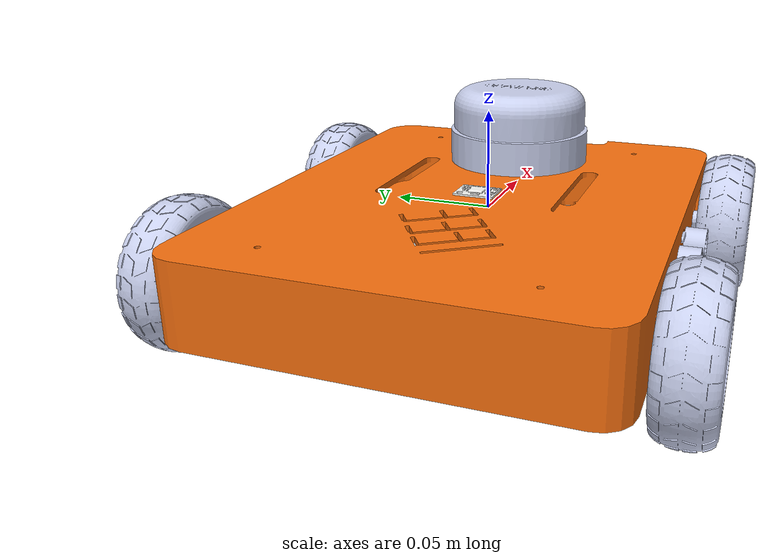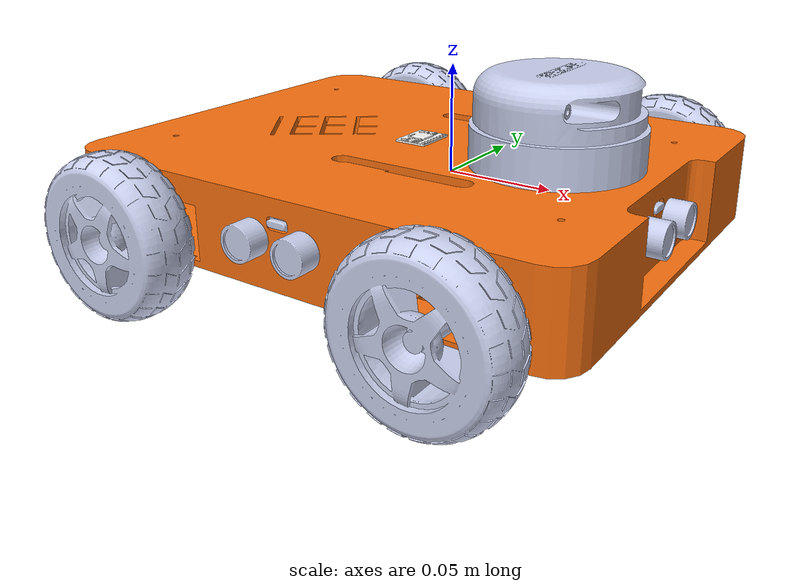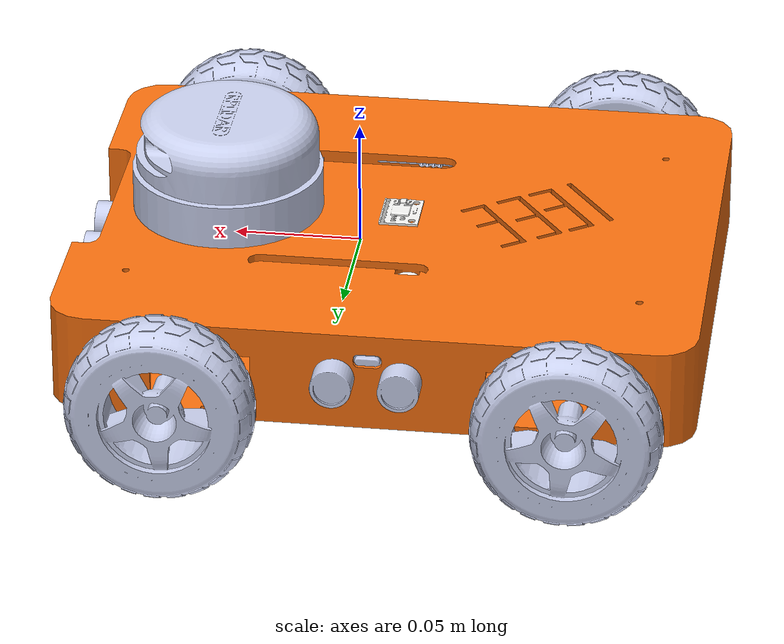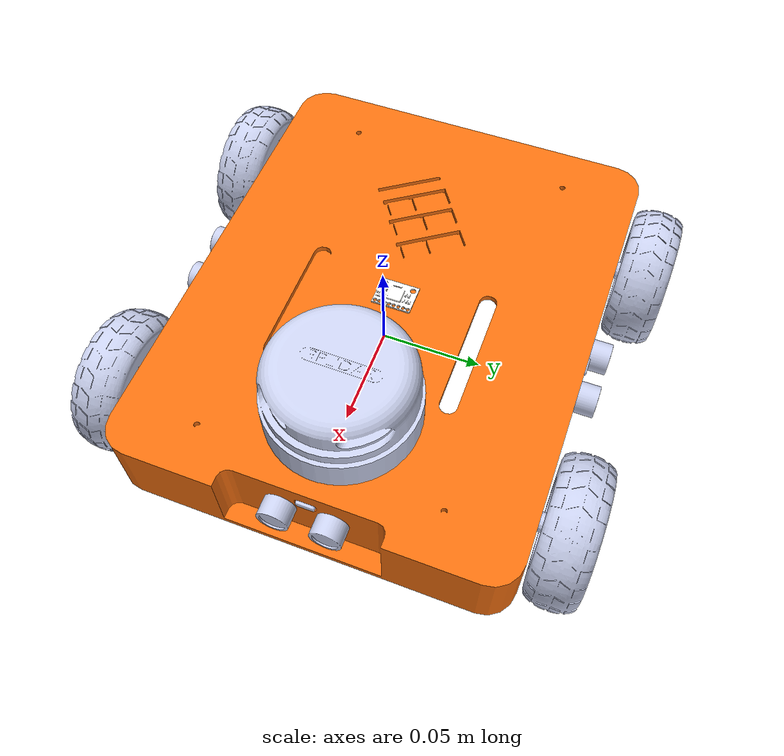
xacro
<robot xmlns:xacro="http://www.ros.org/wiki/xacro" name="milestone2_robot">

<xacro:include filename="$(find milestone2_robot)/urdf/robot.gazebo"/>
<xacro:include filename="$(find milestone2_robot)/urdf/lidar_mpu.xacro"/>
<xacro:include filename="$(find milestone2_robot)/urdf/ultrasonic.xacro"/>
  <link
    name="base_link">
    <inertial>
      <origin
        xyz="-0.0185551553604413 8.98921448433398E-06 -0.00732007406833168"
        rpy="0 0 0" />
      <mass
        value="0.32673937885095" />
      <inertia
        ixx="0.00128436380730563"
        ixy="5.22949659393556E-07"
        ixz="2.88323337445004E-06"
        iyy="0.00199506204789055"
        iyz="-4.28094806808404E-08"
        izz="0.00324543983807175" />
    </inertial>
    <visual>
      <origin
        xyz="0 0 0"
        rpy="0 0 0" />
      <geometry>
        <mesh
          filename="package://milestone2_robot/meshes/base_link.STL" />
      </geometry>
      <material
        name="">
        <color
          rgba="0.972549019607843 0.43921568627451 0.0588235294117647 1" />
      </material>
    </visual>
    <collision>
      <origin
        xyz="0 0 0"
        rpy="0 0 0" />
      <geometry>
        <mesh
          filename="package://milestone2_robot/meshes/base_link.STL" />
      </geometry>
    </collision>
  </link>
  <link
    name="front_right">
    <inertial>
      <origin
        xyz="8.3066E-08 0.006116 -1.0191E-07"
        rpy="0 0 0" />
      <mass
        value="0.030153" />
      <inertia
        ixx="1.3543E-05"
        ixy="-2.1848E-10"
        ixz="7.5064E-11"
        iyy="2.2528E-05"
        iyz="-3.1083E-10"
        izz="1.3543E-05" />
    </inertial>
    <visual>
      <origin
        xyz="0 0 0"
        rpy="0 0 0" />
      <geometry>
        <mesh
          filename="package://milestone2_robot/meshes/front_right.STL" />
      </geometry>
      <material
        name="">
        <color
          rgba="0.79216 0.81961 0.93333 1" />
      </material>
    </visual>
    <collision>
      <origin
        xyz="0 0 0"
        rpy="0 0 0" />
      <geometry>
        <mesh
          filename="package://milestone2_robot/meshes/front_right.STL" />
      </geometry>
    </collision>
  </link>
  <joint
    name="front_right_joint"
    type="continuous">
    <origin
      xyz="0.061391 -0.12147 -0.015218"
      rpy="0 0 0" />
    <parent
      link="base_link" />
    <child
      link="front_right" />
    <axis
      xyz="0 1 0" />
  </joint>
  <link
    name="front_left">
    <inertial>
      <origin
        xyz="-1.1259E-07 -0.006116 6.8694E-08"
        rpy="0 0 0" />
      <mass
        value="0.030153" />
      <inertia
        ixx="1.3543E-05"
        ixy="2.774E-10"
        ixz="7.9895E-11"
        iyy="2.2528E-05"
        iyz="2.5952E-10"
        izz="1.3543E-05" />
    </inertial>
    <visual>
      <origin
        xyz="0 0 0"
        rpy="0 0 0" />
      <geometry>
        <mesh
          filename="package://milestone2_robot/meshes/front_left.STL" />
      </geometry>
      <material
        name="">
        <color
          rgba="0.79216 0.81961 0.93333 1" />
      </material>
    </visual>
    <collision>
      <origin
        xyz="0 0 0"
        rpy="0 0 0" />
      <geometry>
        <mesh
          filename="package://milestone2_robot/meshes/front_left.STL" />
      </geometry>
    </collision>
  </link>
  <joint
    name="front_left_joint"
    type="continuous">
    <origin
      xyz="0.061371 0.12143 -0.0152"
      rpy="0 0 0" />
    <parent
      link="base_link" />
    <child
      link="front_left" />
    <axis
      xyz="0 1 0" />
  </joint>
  <link
    name="rear_right">
    <inertial>
      <origin
        xyz="1.1259E-07 0.006116 6.8694E-08"
        rpy="0 0 0" />
      <mass
        value="0.030153" />
      <inertia
        ixx="1.3543E-05"
        ixy="2.774E-10"
        ixz="-7.9895E-11"
        iyy="2.2528E-05"
        iyz="-2.5952E-10"
        izz="1.3543E-05" />
    </inertial>
    <visual>
      <origin
        xyz="0 0 0"
        rpy="0 0 0" />
      <geometry>
        <mesh
          filename="package://milestone2_robot/meshes/rear_right.STL" />
      </geometry>
      <material
        name="">
        <color
          rgba="0.79216 0.81961 0.93333 1" />
      </material>
    </visual>
    <collision>
      <origin
        xyz="0 0 0"
        rpy="0 0 0" />
      <geometry>
        <mesh
          filename="package://milestone2_robot/meshes/rear_right.STL" />
      </geometry>
    </collision>
  </link>
  <joint
    name="rear_right_joint"
    type="continuous">
    <origin
      xyz="-0.094299 -0.12147 -0.0152"
      rpy="0 0 0" />
    <parent
      link="base_link" />
    <child
      link="rear_right" />
    <axis
      xyz="0 1 0" />
  </joint>
  <link
    name="rear_left">
    <inertial>
      <origin
        xyz="-8.3066E-08 -0.006116 -1.0191E-07"
        rpy="0 0 0" />
      <mass
        value="0.030153" />
      <inertia
        ixx="1.3543E-05"
        ixy="-2.1848E-10"
        ixz="-7.5064E-11"
        iyy="2.2528E-05"
        iyz="3.1083E-10"
        izz="1.3543E-05" />
    </inertial>
    <visual>
      <origin
        xyz="0 0 0"
        rpy="0 0 0" />
      <geometry>
        <mesh
          filename="package://milestone2_robot/meshes/rear_left.STL" />
      </geometry>
      <material
        name="">
        <color
          rgba="0.79216 0.81961 0.93333 1" />
      </material>
    </visual>
    <collision>
      <origin
        xyz="0 0 0"
        rpy="0 0 0" />
      <geometry>
        <mesh
          filename="package://milestone2_robot/meshes/rear_left.STL" />
      </geometry>
    </collision>
  </link>
  <joint
    name="rear_left_joint"
    type="continuous">
    <origin
      xyz="-0.094319 0.12143 -0.015218"
      rpy="0 0 0" />
    <parent
      link="base_link" />
    <child
      link="rear_left" />
    <axis
      xyz="0 1 0" />
  </joint>

<xacro:include filename="$(find milestone2_robot)/urdf/robot.gazebo"/>
<gazebo reference="base_link">
<material>Gazebo/Orange</material>
</gazebo>
<gazebo reference="rear_left">
<material>Gazebo/Black</material>
</gazebo>
<gazebo reference="rear_right">
<material>Gazebo/Black</material>
</gazebo>
<gazebo reference="front_left">
<material>Gazebo/Black</material>
</gazebo>
<gazebo reference="front_right">
<material>Gazebo/Black</material>
</gazebo>
</robot>

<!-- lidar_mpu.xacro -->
<robot xmlns:xacro="http://www.ros.org/wiki/xacro" name="milestone2_robot">
      <link
    name="lidar">
    <inertial>
      <origin
        xyz="-0.027757 0.00015412 -0.012215"
        rpy="0 0 0" />
      <mass
        value="0.16307" />
      <inertia
        ixx="6.0761E-05"
        ixy="2.7477E-08"
        ixz="-2.4121E-07"
        iyy="6.0402E-05"
        iyz="-6.2651E-09"
        izz="0.00010759" />
    </inertial>
    <visual>
      <origin
        xyz="0 0 0"
        rpy="0 0 0" />
      <geometry>
        <mesh
          filename="package://milestone2_robot/meshes/lidar.STL" />
      </geometry>
      <material
        name="">
        <color
          rgba="0.79216 0.81961 0.93333 1" />
      </material>
    </visual>
    <collision>
      <origin
        xyz="0 0 0"
        rpy="0 0 0" />
      <geometry>
        <mesh
          filename="package://milestone2_robot/meshes/lidar.STL" />
      </geometry>
    </collision>
  </link>
  <joint
    name="lidar_joint"
    type="fixed">
    <origin
      xyz="0.079475 -0.0001912 0.043042"
      rpy="0 0 0" />
    <parent
      link="base_link" />
    <child
      link="lidar" />
    <axis
      xyz="0 0 0" />
  </joint>
  <link
    name="mpu">
    <inertial>
      <origin
        xyz="-0.00033795 -0.0002439 -0.0013042"
        rpy="0 0 0" />
      <mass
        value="0.00035125" />
      <inertia
        ixx="9.4569E-09"
        ixy="-2.6879E-13"
        ixz="8.3436E-26"
        iyy="5.2353E-09"
        iyz="-7.9805E-26"
        izz="1.4636E-08" />
    </inertial>
    <visual>
      <origin
        xyz="0 0 0"
        rpy="0 0 0" />
      <geometry>
        <mesh
          filename="package://milestone2_robot/meshes/mpu.STL" />
      </geometry>
      <material
        name="">
        <color
          rgba="0.96471 0.96471 0.95294 1" />
      </material>
    </visual>
    <collision>
      <origin
        xyz="0 0 0"
        rpy="0 0 0" />
      <geometry>
        <mesh
          filename="package://milestone2_robot/meshes/mpu.STL" />
      </geometry>
    </collision>
  </link>
  <joint
    name="mpu_joint"
    type="fixed">
    <origin
      xyz="-0.016366 6.8363E-05 0.014742"
      rpy="0 0 0" />
    <parent
      link="base_link" />
    <child
      link="mpu" />
    <axis
      xyz="0 0 0" />
  </joint>
  <gazebo reference="lidar">
<material>Gazebo/Black</material>
</gazebo>
<gazebo reference="mpu">
<material>Gazebo/Blue</material>
</gazebo>
</robot>

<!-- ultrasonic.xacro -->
<robot xmlns:xacro="http://www.ros.org/wiki/xacro" name="milestone2_robot">
     <link
    name="ultrasonic_front">
    <inertial>
      <origin
        xyz="-0.0071307 0.012957 -5.3951E-06"
        rpy="0 0 0" />
      <mass
        value="0.0062754" />
      <inertia
        ixx="4.6748E-07"
        ixy="-3.2911E-10"
        ixz="-1.9465E-09"
        iyy="1.7872E-07"
        iyz="-7.2811E-11"
        izz="3.903E-07" />
    </inertial>
    <visual>
      <origin
        xyz="0 0 0"
        rpy="0 0 0" />
      <geometry>
        <mesh
          filename="package://milestone2_robot/meshes/ultrasonic_front.STL" />
      </geometry>
      <material
        name="">
        <color
          rgba="0.79216 0.81961 0.93333 1" />
      </material>
    </visual>
    <collision>
      <origin
        xyz="0 0 0"
        rpy="0 0 0" />
      <geometry>
        <mesh
          filename="package://milestone2_robot/meshes/ultrasonic_front.STL" />
      </geometry>
    </collision>
  </link>
  <joint
    name="ultrasonic_front_joint"
    type="fixed">
    <origin
      xyz="0.10754 -0.013018 -0.0057577"
      rpy="0 0 0" />
    <parent
      link="base_link" />
    <child
      link="ultrasonic_front" />
    <axis
      xyz="0 0 0" />
  </joint>
  <link
    name="ultrasonic_right">
    <inertial>
      <origin
        xyz="0.012957 0.0071307 -5.3951E-06"
        rpy="0 0 0" />
      <mass
        value="0.0062754" />
      <inertia
        ixx="1.7872E-07"
        ixy="3.2911E-10"
        ixz="-7.2811E-11"
        iyy="4.6748E-07"
        iyz="1.9465E-09"
        izz="3.903E-07" />
    </inertial>
    <visual>
      <origin
        xyz="0 0 0"
        rpy="0 0 0" />
      <geometry>
        <mesh
          filename="package://milestone2_robot/meshes/ultrasonic_right.STL" />
      </geometry>
      <material
        name="">
        <color
          rgba="0.79216 0.81961 0.93333 1" />
      </material>
    </visual>
    <collision>
      <origin
        xyz="0 0 0"
        rpy="0 0 0" />
      <geometry>
        <mesh
          filename="package://milestone2_robot/meshes/ultrasonic_right.STL" />
      </geometry>
    </collision>
  </link>
  <joint
    name="ultrasonic_right_joint"
    type="fixed">
    <origin
      xyz="-0.029464 -0.10902 -0.0057577"
      rpy="0 0 0" />
    <parent
      link="base_link" />
    <child
      link="ultrasonic_right" />
    <axis
      xyz="0 0 0" />
  </joint>
  <link
    name="ultrasonic_left">
    <inertial>
      <origin
        xyz="0.013043 -0.0071307 -5.3951E-06"
        rpy="0 0 0" />
      <mass
        value="0.0062754" />
      <inertia
        ixx="1.7872E-07"
        ixy="3.2911E-10"
        ixz="7.2811E-11"
        iyy="4.6748E-07"
        iyz="-1.9465E-09"
        izz="3.903E-07" />
    </inertial>
    <visual>
      <origin
        xyz="0 0 0"
        rpy="0 0 0" />
      <geometry>
        <mesh
          filename="package://milestone2_robot/meshes/ultrasonic_left.STL" />
      </geometry>
      <material
        name="">
        <color
          rgba="0.79216 0.81961 0.93333 1" />
      </material>
    </visual>
    <collision>
      <origin
        xyz="0 0 0"
        rpy="0 0 0" />
      <geometry>
        <mesh
          filename="package://milestone2_robot/meshes/ultrasonic_left.STL" />
      </geometry>
    </collision>
  </link>
  <joint
    name="ultrasonic_left_joint"
    type="fixed">
    <origin
      xyz="-0.029464 0.10898 -0.0057577"
      rpy="0 0 0" />
    <parent
      link="base_link" />
    <child
      link="ultrasonic_left" />
    <axis
      xyz="0 0 0" />
  </joint>
<gazebo reference="ultrasonic_right">
<material>Gazebo/Blue</material>
</gazebo>
<gazebo reference="ultrasonic_left">
<material>Gazebo/Blue</material>
</gazebo>
<gazebo reference="ultrasonic_front">
<material>Gazebo/Blue</material>
</gazebo>
</robot>
